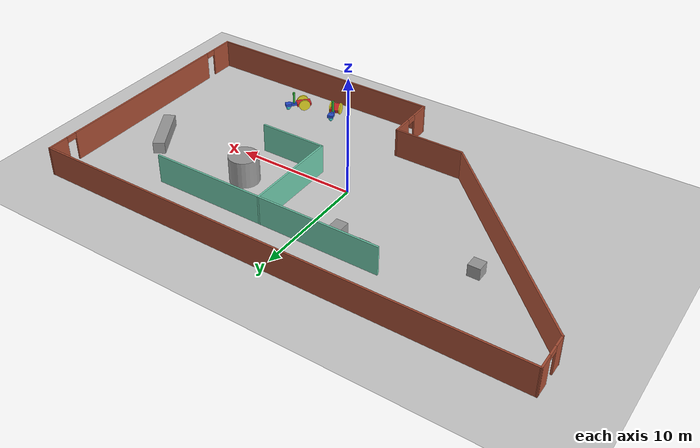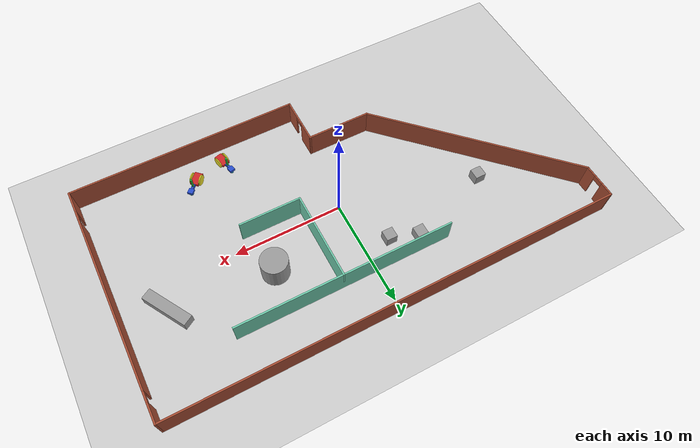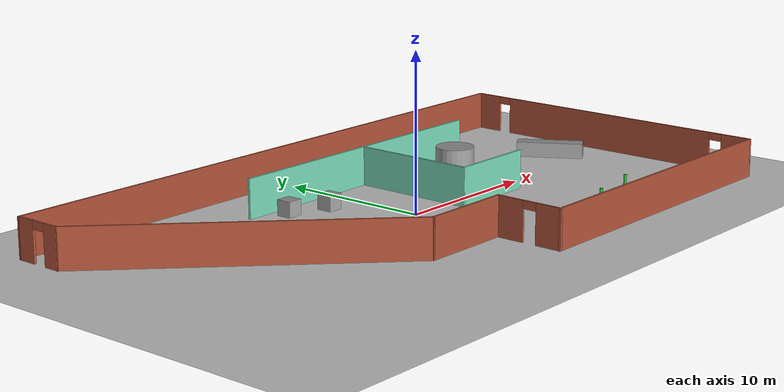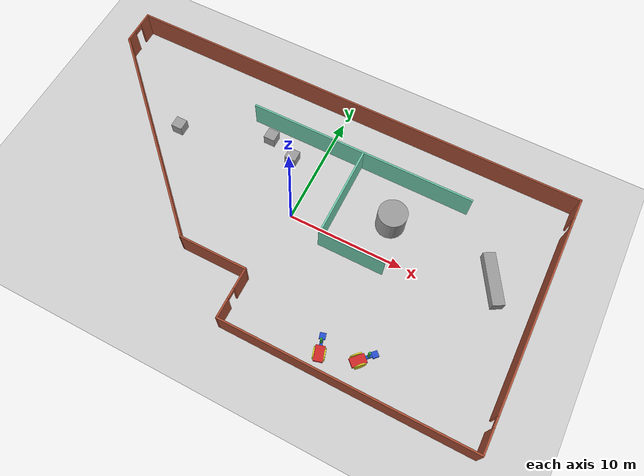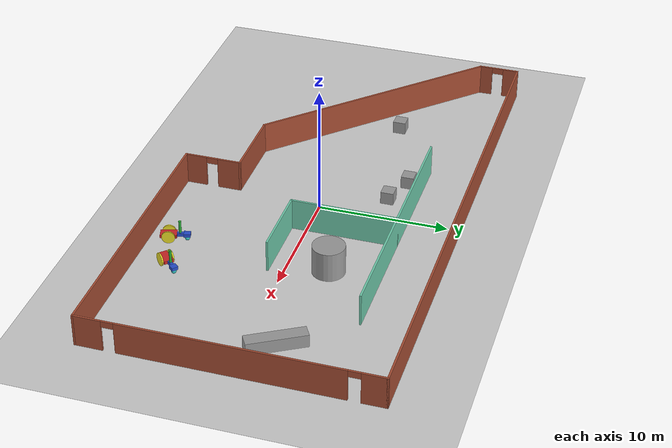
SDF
<sdf version="1.6">
 <world name="default">
  <light name="sun" type="directional">
   <pose>0 0 10 0 -0 0</pose>
   <diffuse>0.8 0.8 0.8 1</diffuse>
   <specular>0.2 0.2 0.2 1</specular>
   <attenuation>
    <range>1000</range>
    <constant>0.9</constant>
    <linear>0.01</linear>
    <quadratic>0.001</quadratic>
   </attenuation>
   <direction>-0.5 0.1 -0.9</direction>
  </light>
  <model name="ground_plane">
   <static>1</static>
   <link name="link">
    <collision name="collision">
     <geometry><plane><normal>0 0 1</normal><size>100 100</size></plane></geometry>
     <surface>
      <contact><collide_bitmask>65535</collide_bitmask></contact>
      <friction><ode><mu>100</mu><mu2>50</mu2></ode></friction>
     </surface>
    </collision>
    <visual name="visual">
     <cast_shadows>0</cast_shadows>
     <geometry><plane><normal>0 0 1</normal><size>100 100</size></plane></geometry>
     <material>
      <script><uri>file://media/materials/scripts/gazebo.material</uri><name>Gazebo/Grey</name></script>
     </material>
    </visual>
   </link>
  </model>
  <gravity>0 0 -9.8</gravity>
  <magnetic_field>6e-06 2.3e-05 -4.2e-05</magnetic_field>
  <atmosphere type="adiabatic"/>
  <physics name="default_physics" default="0" type="ode">
   <max_step_size>0.001</max_step_size>
   <real_time_factor>1</real_time_factor>
   <real_time_update_rate>1000</real_time_update_rate>
  </physics>
  <scene><ambient>0.4 0.4 0.4 1</ambient><background>0.7 0.7 0.7 1</background><shadows>1</shadows></scene>
  <audio><device>default</device></audio>
  <spherical_coordinates>
   <surface_model>EARTH_WGS84</surface_model>
   <latitude_deg>0</latitude_deg>
   <longitude_deg>0</longitude_deg>
   <elevation>0</elevation>
   <heading_deg>0</heading_deg>
  </spherical_coordinates>
  <model name="building">
   <pose>-0.062701 0.052877 0 0 -0 0</pose>
   <link name="Wall_11">
    <collision name="Wall_11_Collision">
     <geometry><box><size>20 0.15 2.5</size></box></geometry>
     <pose>0 0 1.25 0 -0 0</pose>
    </collision>
    <visual name="Wall_11_Visual">
     <pose>0 0 1.25 0 -0 0</pose>
     <geometry><box><size>20 0.15 2.5</size></box></geometry>
     <material>
      <script><uri>file://media/materials/scripts/gazebo.material</uri><name>Gazebo/Grey</name></script>
      <ambient>0.435294 0.796078 0.67451 1</ambient>
     </material>
     <meta><layer>0</layer></meta>
    </visual>
    <pose>2.98006 6.87932 0 0 -0 0</pose>
   </link>
   <link name="Wall_14">
    <collision name="Wall_14_Collision">
     <geometry><box><size>8.25 0.15 2.5</size></box></geometry>
     <pose>0 0 1.25 0 -0 0</pose>
    </collision>
    <visual name="Wall_14_Visual">
     <pose>0 0 1.25 0 -0 0</pose>
     <geometry><box><size>8.25 0.15 2.5</size></box></geometry>
     <material>
      <script><uri>file://media/materials/scripts/gazebo.material</uri><name>Gazebo/Grey</name></script>
      <ambient>0.435294 0.796078 0.67451 1</ambient>
     </material>
     <meta><layer>0</layer></meta>
    </visual>
    <pose>3.2569 2.82932 0 0 -0 -1.5708</pose>
   </link>
   <link name="Wall_15">
    <collision name="Wall_15_Collision">
     <geometry><box><size>5.75 0.15 2.5</size></box></geometry>
     <pose>0 0 1.25 0 -0 0</pose>
    </collision>
    <visual name="Wall_15_Visual">
     <pose>0 0 1.25 0 -0 0</pose>
     <geometry><box><size>5.75 0.15 2.5</size></box></geometry>
     <material>
      <script><uri>file://media/materials/scripts/gazebo.material</uri><name>Gazebo/Grey</name></script>
      <ambient>0.435294 0.796078 0.67451 1</ambient>
     </material>
     <meta><layer>0</layer></meta>
    </visual>
    <pose>6.0569 -1.22068 0 0 -0 0</pose>
   </link>
   <link name="Wall_3">
    <collision name="Wall_3_Collision">
     <geometry><box><size>41.5 0.15 2.5</size></box></geometry>
     <pose>0 0 1.25 0 -0 0</pose>
    </collision>
    <visual name="Wall_3_Visual">
     <pose>0 0 1.25 0 -0 0</pose>
     <geometry><box><size>41.5 0.15 2.5</size></box></geometry>
     <material>
      <script><uri>file://media/materials/scripts/gazebo.material</uri><name>Gazebo/Bricks</name></script>
      <ambient>1 1 1 1</ambient>
     </material>
     <meta><layer>0</layer></meta>
    </visual>
    <pose>0.010345 10.9249 0 0 -0 0</pose>
   </link>
   <link name="Wall_4">
    <pose>20.6853 -0.000125 0 0 -0 -1.5708</pose>
    <visual name="Wall_4_Visual_0">
     <pose>-10.0794 0 1.25 0 -0 0</pose>
     <geometry><box><size>1.84126 0.15 2.5</size></box></geometry>
     <material>
      <script><uri>file://media/materials/scripts/gazebo.material</uri><name>Gazebo/Bricks</name></script>
      <ambient>1 1 1 1</ambient>
     </material>
     <meta><layer>0</layer></meta>
    </visual>
    <collision name="Wall_4_Collision_0">
     <geometry><box><size>1.84126 0.15 2.5</size></box></geometry>
     <pose>-10.0794 0 1.25 0 -0 0</pose>
    </collision>
    <visual name="Wall_4_Visual_1">
     <pose>-0.142709 0 1.25 0 -0 0</pose>
     <geometry><box><size>16.2321 0.15 2.5</size></box></geometry>
     <material>
      <script><uri>file://media/materials/scripts/gazebo.material</uri><name>Gazebo/Bricks</name></script>
      <ambient>1 1 1 1</ambient>
     </material>
     <meta><layer>0</layer></meta>
    </visual>
    <collision name="Wall_4_Collision_1">
     <geometry><box><size>16.2321 0.15 2.5</size></box></geometry>
     <pose>-0.142709 0 1.25 0 -0 0</pose>
    </collision>
    <visual name="Wall_4_Visual_2">
     <pose>9.93666 0 1.25 0 -0 0</pose>
     <geometry><box><size>2.12668 0.15 2.5</size></box></geometry>
     <material>
      <script><uri>file://media/materials/scripts/gazebo.material</uri><name>Gazebo/Bricks</name></script>
      <ambient>1 1 1 1</ambient>
     </material>
     <meta><layer>0</layer></meta>
    </visual>
    <collision name="Wall_4_Collision_2">
     <geometry><box><size>2.12668 0.15 2.5</size></box></geometry>
     <pose>9.93666 0 1.25 0 -0 0</pose>
    </collision>
    <visual name="Wall_4_Visual_3">
     <pose>-8.70874 0 2.25 0 -0 0</pose>
     <geometry><box><size>0.9 0.15 0.5</size></box></geometry>
     <material>
      <script><uri>file://media/materials/scripts/gazebo.material</uri><name>Gazebo/Bricks</name></script>
      <ambient>1 1 1 1</ambient>
     </material>
     <meta><layer>0</layer></meta>
    </visual>
    <collision name="Wall_4_Collision_3">
     <geometry><box><size>0.9 0.15 0.5</size></box></geometry>
     <pose>-8.70874 0 2.25 0 -0 0</pose>
    </collision>
    <visual name="Wall_4_Visual_4">
     <pose>8.42332 0 2.25 0 -0 0</pose>
     <geometry><box><size>0.9 0.15 0.5</size></box></geometry>
     <material>
      <script><uri>file://media/materials/scripts/gazebo.material</uri><name>Gazebo/Bricks</name></script>
      <ambient>1 1 1 1</ambient>
     </material>
     <meta><layer>0</layer></meta>
    </visual>
    <collision name="Wall_4_Collision_4">
     <geometry><box><size>0.9 0.15 0.5</size></box></geometry>
     <pose>8.42332 0 2.25 0 -0 0</pose>
    </collision>
   </link>
   <link name="Wall_5">
    <collision name="Wall_5_Collision">
     <geometry><box><size>21.25 0.15 2.5</size></box></geometry>
     <pose>0 0 1.25 0 -0 0</pose>
    </collision>
    <visual name="Wall_5_Visual">
     <pose>0 0 1.25 0 -0 0</pose>
     <geometry><box><size>21.25 0.15 2.5</size></box></geometry>
     <material>
      <script><uri>file://media/materials/scripts/gazebo.material</uri><name>Gazebo/Bricks</name></script>
      <ambient>1 1 1 1</ambient>
     </material>
     <meta><layer>0</layer></meta>
    </visual>
    <pose>10.1353 -10.9251 0 0 -0 3.14159</pose>
   </link>
   <link name="Wall_6">
    <pose>-0.414655 -8.75013 0 0 -0 1.5708</pose>
    <visual name="Wall_6_Visual_0">
     <pose>-1.38014 0 1.25 0 -0 0</pose>
     <geometry><box><size>1.73971 0.15 2.5</size></box></geometry>
     <material>
      <script><uri>file://media/materials/scripts/gazebo.material</uri><name>Gazebo/Bricks</name></script>
      <ambient>1 1 1 1</ambient>
     </material>
     <meta><layer>0</layer></meta>
    </visual>
    <collision name="Wall_6_Collision_0">
     <geometry><box><size>1.73971 0.15 2.5</size></box></geometry>
     <pose>-1.38014 0 1.25 0 -0 0</pose>
    </collision>
    <visual name="Wall_6_Visual_1">
     <pose>1.31986 0 1.25 0 -0 0</pose>
     <geometry><box><size>1.86029 0.15 2.5</size></box></geometry>
     <material>
      <script><uri>file://media/materials/scripts/gazebo.material</uri><name>Gazebo/Bricks</name></script>
      <ambient>1 1 1 1</ambient>
     </material>
     <meta><layer>0</layer></meta>
    </visual>
    <collision name="Wall_6_Collision_1">
     <geometry><box><size>1.86029 0.15 2.5</size></box></geometry>
     <pose>1.31986 0 1.25 0 -0 0</pose>
    </collision>
    <visual name="Wall_6_Visual_2">
     <pose>-0.060286 0 2.25 0 -0 0</pose>
     <geometry><box><size>0.9 0.15 0.5</size></box></geometry>
     <material>
      <script><uri>file://media/materials/scripts/gazebo.material</uri><name>Gazebo/Bricks</name></script>
      <ambient>1 1 1 1</ambient>
     </material>
     <meta><layer>0</layer></meta>
    </visual>
    <collision name="Wall_6_Collision_2">
     <geometry><box><size>0.9 0.15 0.5</size></box></geometry>
     <pose>-0.060286 0 2.25 0 -0 0</pose>
    </collision>
   </link>
   <link name="Wall_7">
    <collision name="Wall_7_Collision">
     <geometry><box><size>6 0.15 2.5</size></box></geometry>
     <pose>0 0 1.25 0 -0 0</pose>
    </collision>
    <visual name="Wall_7_Visual">
     <pose>0 0 1.25 0 -0 0</pose>
     <geometry><box><size>6 0.15 2.5</size></box></geometry>
     <material>
      <script><uri>file://media/materials/scripts/gazebo.material</uri><name>Gazebo/Bricks</name></script>
      <ambient>1 1 1 1</ambient>
     </material>
     <meta><layer>0</layer></meta>
    </visual>
    <pose>-3.33966 -6.57512 0 0 -0 3.14159</pose>
   </link>
   <link name="Wall_8">
    <collision name="Wall_8_Collision">
     <geometry><box><size>20.5 0.15 2.5</size></box></geometry>
     <pose>0 0 1.25 0 -0 0</pose>
    </collision>
    <visual name="Wall_8_Visual">
     <pose>0 0 1.25 0 -0 0</pose>
     <geometry><box><size>20.5 0.15 2.5</size></box></geometry>
     <material>
      <script><uri>file://media/materials/scripts/gazebo.material</uri><name>Gazebo/Bricks</name></script>
      <ambient>1 1 1 1</ambient>
     </material>
     <meta><layer>0</layer></meta>
    </visual>
    <pose>-13.4595 0.619687 0 0 -0 2.35619</pose>
   </link>
   <link name="Wall_9">
    <pose>-20.6595 9.36969 0 0 -0 1.57413</pose>
    <visual name="Wall_9_Visual_0">
     <pose>-1.08931 0 1.25 0 -0 0</pose>
     <geometry><box><size>1.08177 0.15 2.5</size></box></geometry>
     <material>
      <script><uri>file://media/materials/scripts/gazebo.material</uri><name>Gazebo/Bricks</name></script>
      <ambient>1 1 1 1</ambient>
     </material>
     <meta><layer>0</layer></meta>
    </visual>
    <collision name="Wall_9_Collision_0">
     <geometry><box><size>1.08177 0.15 2.5</size></box></geometry>
     <pose>-1.08931 0 1.25 0 -0 0</pose>
    </collision>
    <visual name="Wall_9_Visual_1">
     <pose>0.990883 0 1.25 0 -0 0</pose>
     <geometry><box><size>1.27863 0.15 2.5</size></box></geometry>
     <material>
      <script><uri>file://media/materials/scripts/gazebo.material</uri><name>Gazebo/Bricks</name></script>
      <ambient>1 1 1 1</ambient>
     </material>
     <meta><layer>0</layer></meta>
    </visual>
    <collision name="Wall_9_Collision_1">
     <geometry><box><size>1.27863 0.15 2.5</size></box></geometry>
     <pose>0.990883 0 1.25 0 -0 0</pose>
    </collision>
    <visual name="Wall_9_Visual_2">
     <pose>-0.09843 0 2.25 0 -0 0</pose>
     <geometry><box><size>0.9 0.15 0.5</size></box></geometry>
     <material>
      <script><uri>file://media/materials/scripts/gazebo.material</uri><name>Gazebo/Bricks</name></script>
      <ambient>1 1 1 1</ambient>
     </material>
     <meta><layer>0</layer></meta>
    </visual>
    <collision name="Wall_9_Collision_2">
     <geometry><box><size>0.9 0.15 0.5</size></box></geometry>
     <pose>-0.09843 0 2.25 0 -0 0</pose>
    </collision>
   </link>
   <static>1</static>
  </model>
  <model name="unit_box">
   <pose>-12.669 3.04784 0.499995 0 1e-05 0</pose>
   <link name="link">
    <inertial>
     <mass>1</mass>
     <inertia>
      <ixx>0.166667</ixx>
      <ixy>0</ixy>
      <ixz>0</ixz>
      <iyy>0.166667</iyy>
      <iyz>0</iyz>
      <izz>0.166667</izz>
     </inertia>
    </inertial>
    <collision name="collision"><geometry><box><size>1 1 1</size></box></geometry></collision>
    <visual name="visual">
     <geometry><box><size>1 1 1</size></box></geometry>
     <material>
      <script><name>Gazebo/Grey</name><uri>file://media/materials/scripts/gazebo.material</uri></script>
     </material>
    </visual>
   </link>
  </model>
  <model name="unit_box_0">
   <pose>-4.92615 5.73594 0.499995 1e-05 -0 0</pose>
   <link name="link">
    <inertial>
     <mass>1</mass>
     <inertia>
      <ixx>0.166667</ixx>
      <ixy>0</ixy>
      <ixz>0</ixz>
      <iyy>0.166667</iyy>
      <iyz>0</iyz>
      <izz>0.166667</izz>
     </inertia>
    </inertial>
    <collision name="collision"><geometry><box><size>1 1 1</size></box></geometry></collision>
    <visual name="visual">
     <geometry><box><size>1 1 1</size></box></geometry>
     <material>
      <script><name>Gazebo/Grey</name><uri>file://media/materials/scripts/gazebo.material</uri></script>
     </material>
    </visual>
   </link>
  </model>
  <model name="unit_box_1">
   <pose>-2.39819 4.79802 0.499995 -1e-05 0 0</pose>
   <link name="link">
    <inertial>
     <mass>1</mass>
     <inertia>
      <ixx>0.166667</ixx>
      <ixy>0</ixy>
      <ixz>0</ixz>
      <iyy>0.166667</iyy>
      <iyz>0</iyz>
      <izz>0.166667</izz>
     </inertia>
    </inertial>
    <collision name="collision"><geometry><box><size>1 1 1</size></box></geometry></collision>
    <visual name="visual">
     <geometry><box><size>1 1 1</size></box></geometry>
     <material>
      <script><name>Gazebo/Grey</name><uri>file://media/materials/scripts/gazebo.material</uri></script>
     </material>
    </visual>
   </link>
  </model>
  <model name="unit_cylinder">
   <pose>7.64174 3.07512 1.14323 0 -0 0</pose>
   <link name="link">
    <inertial>
     <mass>1</mass>
     <inertia><ixx>0.145833</ixx><ixy>0</ixy><ixz>0</ixz><iyy>0.145833</iyy><iyz>0</iyz><izz>0.125</izz></inertia>
    </inertial>
    <collision name="collision">
     <geometry><cylinder><radius>1.2309</radius><length>2.28647</length></cylinder></geometry>
    </collision>
    <visual name="visual">
     <geometry><cylinder><radius>1.2309</radius><length>2.28647</length></cylinder></geometry>
     <material>
      <script><name>Gazebo/Grey</name><uri>file://media/materials/scripts/gazebo.material</uri></script>
     </material>
    </visual>
   </link>
  </model>
  <model name="unit_box_2">
   <pose>16.8777 2.18344 0.498944 -0.000478 0 0.531556</pose>
   <link name="link">
    <inertial>
     <mass>1</mass>
     <inertia>
      <ixx>0.166667</ixx>
      <ixy>0</ixy>
      <ixz>0</ixz>
      <iyy>0.166667</iyy>
      <iyz>0</iyz>
      <izz>0.166667</izz>
     </inertia>
    </inertial>
    <collision name="collision"><geometry><box><size>1 4.42523 1</size></box></geometry></collision>
    <visual name="visual">
     <geometry><box><size>1 4.42523 1</size></box></geometry>
     <material>
      <script><name>Gazebo/Grey</name><uri>file://media/materials/scripts/gazebo.material</uri></script>
     </material>
    </visual>
   </link>
  </model>
  <model name="model">
   <link name="link_1">
    <inertial>
     <mass>1</mass>
     <inertia>
      <ixx>0.166667</ixx>
      <ixy>0</ixy>
      <ixz>0</ixz>
      <iyy>0.166667</iyy>
      <iyz>0</iyz>
      <izz>0.166667</izz>
     </inertia>
    </inertial>
    <pose>0.002679 -0.035833 0.401131 0 -0 0</pose>
    <visual name="visual">
     <geometry><box><size>0.75 1.25 0.25</size></box></geometry>
     <material>
      <script><uri>file://media/materials/scripts/gazebo.material</uri><name>Gazebo/Red</name></script>
     </material>
    </visual>
    <collision name="collision">
     <geometry><box><size>0.75 1.25 0.25</size></box></geometry>
     <surface>
      <friction>
       <ode><mu>1</mu><mu2>1</mu2><fdir1>0 0 0</fdir1><slip1>0</slip1><slip2>0</slip2></ode>
       <torsional>
        <coefficient>1</coefficient>
        <patch_radius>0</patch_radius>
        <surface_radius>0</surface_radius>
        <use_patch_radius>1</use_patch_radius>
        <ode><slip>0</slip></ode>
       </torsional>
      </friction>
      <bounce><restitution_coefficient>0</restitution_coefficient><threshold>1e+06</threshold></bounce>
      <contact>
       <collide_without_contact>0</collide_without_contact>
       <collide_without_contact_bitmask>1</collide_without_contact_bitmask>
       <collide_bitmask>1</collide_bitmask>
       <ode>
        <soft_cfm>0</soft_cfm>
        <soft_erp>0.2</soft_erp>
        <kp>1e+13</kp>
        <kd>1</kd>
        <max_vel>0.01</max_vel>
        <min_depth>0</min_depth>
       </ode>
       <bullet>
        <split_impulse>1</split_impulse>
        <split_impulse_penetration_threshold>-0.01</split_impulse_penetration_threshold>
        <soft_cfm>0</soft_cfm>
        <soft_erp>0.2</soft_erp>
        <kp>1e+13</kp>
        <kd>1</kd>
       </bullet>
      </contact>
     </surface>
    </collision>
   </link>
   <link name="link_2_clone">
    <inertial>
     <mass>1</mass>
     <inertia><ixx>0.145833</ixx><ixy>0</ixy><ixz>0</ixz><iyy>0.145833</iyy><iyz>0</iyz><izz>0.125</izz></inertia>
    </inertial>
    <pose>-0.422418 -0.035833 0.401131 1.5707 0 1.5707</pose>
    <visual name="visual">
     <geometry><cylinder><radius>0.5</radius><length>0.1</length></cylinder></geometry>
     <material>
      <script><uri>file://media/materials/scripts/gazebo.material</uri><name>Gazebo/Yellow</name></script>
     </material>
    </visual>
    <collision name="collision">
     <geometry><cylinder><radius>0.5</radius><length>0.1</length></cylinder></geometry>
     <surface>
      <friction>
       <ode><mu>1</mu><mu2>1</mu2><fdir1>0 0 0</fdir1><slip1>0</slip1><slip2>0</slip2></ode>
       <torsional>
        <coefficient>1</coefficient>
        <patch_radius>0</patch_radius>
        <surface_radius>0</surface_radius>
        <use_patch_radius>1</use_patch_radius>
        <ode><slip>0</slip></ode>
       </torsional>
      </friction>
      <bounce><restitution_coefficient>0</restitution_coefficient><threshold>1e+06</threshold></bounce>
      <contact>
       <collide_without_contact>0</collide_without_contact>
       <collide_without_contact_bitmask>1</collide_without_contact_bitmask>
       <collide_bitmask>1</collide_bitmask>
       <ode>
        <soft_cfm>0</soft_cfm>
        <soft_erp>0.2</soft_erp>
        <kp>1e+13</kp>
        <kd>1</kd>
        <max_vel>0.01</max_vel>
        <min_depth>0</min_depth>
       </ode>
       <bullet>
        <split_impulse>1</split_impulse>
        <split_impulse_penetration_threshold>-0.01</split_impulse_penetration_threshold>
        <soft_cfm>0</soft_cfm>
        <soft_erp>0.2</soft_erp>
        <kp>1e+13</kp>
        <kd>1</kd>
       </bullet>
      </contact>
     </surface>
    </collision>
   </link>
   <link name="link_2_clone_clone">
    <inertial>
     <mass>1</mass>
     <inertia><ixx>0.145833</ixx><ixy>0</ixy><ixz>0</ixz><iyy>0.145833</iyy><iyz>0</iyz><izz>0.125</izz></inertia>
    </inertial>
    <pose>0.427775 -0.035833 0.401131 1.5707 0 1.5707</pose>
    <visual name="visual">
     <geometry><cylinder><radius>0.5</radius><length>0.1</length></cylinder></geometry>
     <material>
      <script><uri>file://media/materials/scripts/gazebo.material</uri><name>Gazebo/Yellow</name></script>
     </material>
    </visual>
    <collision name="collision">
     <geometry><cylinder><radius>0.5</radius><length>0.1</length></cylinder></geometry>
     <surface>
      <friction>
       <ode><mu>1</mu><mu2>1</mu2><fdir1>0 0 0</fdir1><slip1>0</slip1><slip2>0</slip2></ode>
       <torsional>
        <coefficient>1</coefficient>
        <patch_radius>0</patch_radius>
        <surface_radius>0</surface_radius>
        <use_patch_radius>1</use_patch_radius>
        <ode><slip>0</slip></ode>
       </torsional>
      </friction>
      <bounce><restitution_coefficient>0</restitution_coefficient><threshold>1e+06</threshold></bounce>
      <contact>
       <collide_without_contact>0</collide_without_contact>
       <collide_without_contact_bitmask>1</collide_without_contact_bitmask>
       <collide_bitmask>1</collide_bitmask>
       <ode>
        <soft_cfm>0</soft_cfm>
        <soft_erp>0.2</soft_erp>
        <kp>1e+13</kp>
        <kd>1</kd>
        <max_vel>0.01</max_vel>
        <min_depth>0</min_depth>
       </ode>
       <bullet>
        <split_impulse>1</split_impulse>
        <split_impulse_penetration_threshold>-0.01</split_impulse_penetration_threshold>
        <soft_cfm>0</soft_cfm>
        <soft_erp>0.2</soft_erp>
        <kp>1e+13</kp>
        <kd>1</kd>
       </bullet>
      </contact>
     </surface>
    </collision>
   </link>
   <link name="link_3">
    <inertial>
     <mass>1</mass>
     <inertia>
      <ixx>0.166667</ixx>
      <ixy>0</ixy>
      <ixz>0</ixz>
      <iyy>0.166667</iyy>
      <iyz>0</iyz>
      <izz>0.166667</izz>
     </inertia>
    </inertial>
    <pose>-0.004821 0.839167 0.401131 0 -0 0</pose>
    <visual name="visual">
     <geometry><box><size>0.25 0.5 0.25</size></box></geometry>
     <material>
      <script><uri>file://media/materials/scripts/gazebo.material</uri><name>Gazebo/Blue</name></script>
     </material>
    </visual>
    <collision name="collision">
     <geometry><box><size>0.25 0.5 0.25</size></box></geometry>
     <surface>
      <friction>
       <ode><mu>1</mu><mu2>1</mu2><fdir1>0 0 0</fdir1><slip1>0</slip1><slip2>0</slip2></ode>
       <torsional>
        <coefficient>1</coefficient>
        <patch_radius>0</patch_radius>
        <surface_radius>0</surface_radius>
        <use_patch_radius>1</use_patch_radius>
        <ode><slip>0</slip></ode>
       </torsional>
      </friction>
      <bounce><restitution_coefficient>0</restitution_coefficient><threshold>1e+06</threshold></bounce>
      <contact>
       <collide_without_contact>0</collide_without_contact>
       <collide_without_contact_bitmask>1</collide_without_contact_bitmask>
       <collide_bitmask>1</collide_bitmask>
       <ode>
        <soft_cfm>0</soft_cfm>
        <soft_erp>0.2</soft_erp>
        <kp>1e+13</kp>
        <kd>1</kd>
        <max_vel>0.01</max_vel>
        <min_depth>0</min_depth>
       </ode>
       <bullet>
        <split_impulse>1</split_impulse>
        <split_impulse_penetration_threshold>-0.01</split_impulse_penetration_threshold>
        <soft_cfm>0</soft_cfm>
        <soft_erp>0.2</soft_erp>
        <kp>1e+13</kp>
        <kd>1</kd>
       </bullet>
      </contact>
     </surface>
    </collision>
   </link>
   <link name="link_3_clone">
    <inertial>
     <mass>1</mass>
     <inertia>
      <ixx>0.166667</ixx>
      <ixy>0</ixy>
      <ixz>0</ixz>
      <iyy>0.166667</iyy>
      <iyz>0</iyz>
      <izz>0.166667</izz>
     </inertia>
    </inertial>
    <pose>0.002679 1.33917 0.401131 0 -0 0</pose>
    <visual name="visual">
     <geometry><box><size>0.5 0.5 0.25</size></box></geometry>
     <material>
      <script><uri>file://media/materials/scripts/gazebo.material</uri><name>Gazebo/Blue</name></script>
     </material>
    </visual>
    <collision name="collision">
     <geometry><box><size>0.5 0.5 0.25</size></box></geometry>
     <surface>
      <friction>
       <ode><mu>1</mu><mu2>1</mu2><fdir1>0 0 0</fdir1><slip1>0</slip1><slip2>0</slip2></ode>
       <torsional>
        <coefficient>1</coefficient>
        <patch_radius>0</patch_radius>
        <surface_radius>0</surface_radius>
        <use_patch_radius>1</use_patch_radius>
        <ode><slip>0</slip></ode>
       </torsional>
      </friction>
      <bounce><restitution_coefficient>0</restitution_coefficient><threshold>1e+06</threshold></bounce>
      <contact>
       <collide_without_contact>0</collide_without_contact>
       <collide_without_contact_bitmask>1</collide_without_contact_bitmask>
       <collide_bitmask>1</collide_bitmask>
       <ode>
        <soft_cfm>0</soft_cfm>
        <soft_erp>0.2</soft_erp>
        <kp>1e+13</kp>
        <kd>1</kd>
        <max_vel>0.01</max_vel>
        <min_depth>0</min_depth>
       </ode>
       <bullet>
        <split_impulse>1</split_impulse>
        <split_impulse_penetration_threshold>-0.01</split_impulse_penetration_threshold>
        <soft_cfm>0</soft_cfm>
        <soft_erp>0.2</soft_erp>
        <kp>1e+13</kp>
        <kd>1</kd>
       </bullet>
      </contact>
     </surface>
    </collision>
   </link>
   <link name="link_4">
    <inertial>
     <mass>1</mass>
     <inertia><ixx>0.1</ixx><ixy>0</ixy><ixz>0</ixz><iyy>0.1</iyy><iyz>0</iyz><izz>0.1</izz></inertia>
    </inertial>
    <pose>0.002679 1.33917 0.088631 0 -0 0</pose>
    <visual name="visual">
     <geometry><sphere><radius>0.1875</radius></sphere></geometry>
     <material>
      <script><uri>file://media/materials/scripts/gazebo.material</uri><name>Gazebo/Turquoise</name></script>
     </material>
    </visual>
    <collision name="collision">
     <geometry><sphere><radius>0.1875</radius></sphere></geometry>
     <surface>
      <friction>
       <ode><mu>1</mu><mu2>1</mu2><fdir1>0 0 0</fdir1><slip1>0</slip1><slip2>0</slip2></ode>
       <torsional>
        <coefficient>1</coefficient>
        <patch_radius>0</patch_radius>
        <surface_radius>0</surface_radius>
        <use_patch_radius>1</use_patch_radius>
        <ode><slip>0</slip></ode>
       </torsional>
      </friction>
      <bounce><restitution_coefficient>0</restitution_coefficient><threshold>1e+06</threshold></bounce>
      <contact>
       <collide_without_contact>0</collide_without_contact>
       <collide_without_contact_bitmask>1</collide_without_contact_bitmask>
       <collide_bitmask>1</collide_bitmask>
       <ode>
        <soft_cfm>0</soft_cfm>
        <soft_erp>0.2</soft_erp>
        <kp>1e+13</kp>
        <kd>1</kd>
        <max_vel>0.01</max_vel>
        <min_depth>0</min_depth>
       </ode>
       <bullet>
        <split_impulse>1</split_impulse>
        <split_impulse_penetration_threshold>-0.01</split_impulse_penetration_threshold>
        <soft_cfm>0</soft_cfm>
        <soft_erp>0.2</soft_erp>
        <kp>1e+13</kp>
        <kd>1</kd>
       </bullet>
      </contact>
     </surface>
    </collision>
   </link>
   <link name="link_5">
    <inertial>
     <mass>1</mass>
     <inertia><ixx>0.145833</ixx><ixy>0</ixy><ixz>0</ixz><iyy>0.145833</iyy><iyz>0</iyz><izz>0.125</izz></inertia>
    </inertial>
    <pose>-0.017321 0.819167 1.04113 0 -0 0</pose>
    <visual name="visual">
     <geometry><cylinder><radius>0.1</radius><length>1</length></cylinder></geometry>
     <material>
      <script><uri>file://media/materials/scripts/gazebo.material</uri><name>Gazebo/Green</name></script>
     </material>
    </visual>
    <collision name="collision">
     <geometry><cylinder><radius>0.1</radius><length>1</length></cylinder></geometry>
     <surface>
      <friction>
       <ode><mu>1</mu><mu2>1</mu2><fdir1>0 0 0</fdir1><slip1>0</slip1><slip2>0</slip2></ode>
       <torsional>
        <coefficient>1</coefficient>
        <patch_radius>0</patch_radius>
        <surface_radius>0</surface_radius>
        <use_patch_radius>1</use_patch_radius>
        <ode><slip>0</slip></ode>
       </torsional>
      </friction>
      <bounce><restitution_coefficient>0</restitution_coefficient><threshold>1e+06</threshold></bounce>
      <contact>
       <collide_without_contact>0</collide_without_contact>
       <collide_without_contact_bitmask>1</collide_without_contact_bitmask>
       <collide_bitmask>1</collide_bitmask>
       <ode>
        <soft_cfm>0</soft_cfm>
        <soft_erp>0.2</soft_erp>
        <kp>1e+13</kp>
        <kd>1</kd>
        <max_vel>0.01</max_vel>
        <min_depth>0</min_depth>
       </ode>
       <bullet>
        <split_impulse>1</split_impulse>
        <split_impulse_penetration_threshold>-0.01</split_impulse_penetration_threshold>
        <soft_cfm>0</soft_cfm>
        <soft_erp>0.2</soft_erp>
        <kp>1e+13</kp>
        <kd>1</kd>
       </bullet>
      </contact>
     </surface>
    </collision>
   </link>
   <joint name="link_1_JOINT_0" type="revolute">
    <parent>link_1</parent>
    <child>link_2_clone_clone</child>
    <axis>
     <xyz>0 0 1</xyz>
     <use_parent_model_frame>0</use_parent_model_frame>
     <limit>
      <lower>-1.79769e+308</lower>
      <upper>1.79769e+308</upper>
      <effort>-1</effort>
      <velocity>-1</velocity>
     </limit>
     <dynamics>
      <spring_reference>0</spring_reference>
      <spring_stiffness>0</spring_stiffness>
      <damping>0</damping>
     </dynamics>
    </axis>
    <physics>
     <ode><limit><cfm>0</cfm><erp>0.2</erp></limit><suspension><cfm>0</cfm><erp>0.2</erp></suspension></ode>
    </physics>
   </joint>
   <joint name="link_1_JOINT_1" type="revolute">
    <parent>link_1</parent>
    <child>link_2_clone</child>
    <axis>
     <xyz>0 0 1</xyz>
     <use_parent_model_frame>0</use_parent_model_frame>
     <limit>
      <lower>-1.79769e+308</lower>
      <upper>1.79769e+308</upper>
      <effort>-1</effort>
      <velocity>-1</velocity>
     </limit>
     <dynamics>
      <spring_reference>0</spring_reference>
      <spring_stiffness>0</spring_stiffness>
      <damping>0</damping>
     </dynamics>
    </axis>
    <physics>
     <ode><limit><cfm>0</cfm><erp>0.2</erp></limit><suspension><cfm>0</cfm><erp>0.2</erp></suspension></ode>
    </physics>
   </joint>
   <joint name="link_1_JOINT_3" type="fixed">
    <parent>link_1</parent>
    <child>link_3</child>
    <physics>
     <ode><limit><cfm>0</cfm><erp>0.2</erp></limit><suspension><cfm>0</cfm><erp>0.2</erp></suspension></ode>
    </physics>
   </joint>
   <joint name="link_3_JOINT_4" type="fixed">
    <parent>link_3</parent>
    <child>link_3_clone</child>
    <physics>
     <ode><limit><cfm>0</cfm><erp>0.2</erp></limit><suspension><cfm>0</cfm><erp>0.2</erp></suspension></ode>
    </physics>
   </joint>
   <joint name="link_3_JOINT_6" type="fixed">
    <parent>link_3</parent>
    <child>link_5</child>
    <physics>
     <ode><limit><cfm>0</cfm><erp>0.2</erp></limit><suspension><cfm>0</cfm><erp>0.2</erp></suspension></ode>
    </physics>
   </joint>
   <joint name="link_3_clone_JOINT_5" type="ball">
    <parent>link_3_clone</parent>
    <child>link_4</child>
    <physics>
     <ode><limit><cfm>0</cfm><erp>0.2</erp></limit><suspension><cfm>0</cfm><erp>0.2</erp></suspension></ode>
    </physics>
   </joint>
   <static>0</static>
   <pose>7.32854 -9.3021 0.098873 -3e-06 3e-06 0.273419</pose>
  </model>
  <model name="model_0">
   <link name="link_1">
    <inertial>
     <mass>1</mass>
     <inertia>
      <ixx>0.166667</ixx>
      <ixy>0</ixy>
      <ixz>0</ixz>
      <iyy>0.166667</iyy>
      <iyz>0</iyz>
      <izz>0.166667</izz>
     </inertia>
    </inertial>
    <pose>0.002679 -0.035833 0.401131 0 -0 0</pose>
    <visual name="visual">
     <geometry><box><size>0.75 1.25 0.25</size></box></geometry>
     <material>
      <script><uri>file://media/materials/scripts/gazebo.material</uri><name>Gazebo/Red</name></script>
     </material>
    </visual>
    <collision name="collision">
     <geometry><box><size>0.75 1.25 0.25</size></box></geometry>
     <surface>
      <friction>
       <ode><mu>1</mu><mu2>1</mu2><fdir1>0 0 0</fdir1><slip1>0</slip1><slip2>0</slip2></ode>
       <torsional>
        <coefficient>1</coefficient>
        <patch_radius>0</patch_radius>
        <surface_radius>0</surface_radius>
        <use_patch_radius>1</use_patch_radius>
        <ode><slip>0</slip></ode>
       </torsional>
      </friction>
      <bounce><restitution_coefficient>0</restitution_coefficient><threshold>1e+06</threshold></bounce>
      <contact>
       <collide_without_contact>0</collide_without_contact>
       <collide_without_contact_bitmask>1</collide_without_contact_bitmask>
       <collide_bitmask>1</collide_bitmask>
       <ode>
        <soft_cfm>0</soft_cfm>
        <soft_erp>0.2</soft_erp>
        <kp>1e+13</kp>
        <kd>1</kd>
        <max_vel>0.01</max_vel>
        <min_depth>0</min_depth>
       </ode>
       <bullet>
        <split_impulse>1</split_impulse>
        <split_impulse_penetration_threshold>-0.01</split_impulse_penetration_threshold>
        <soft_cfm>0</soft_cfm>
        <soft_erp>0.2</soft_erp>
        <kp>1e+13</kp>
        <kd>1</kd>
       </bullet>
      </contact>
     </surface>
    </collision>
   </link>
   <link name="link_2_clone">
    <inertial>
     <mass>1</mass>
     <inertia><ixx>0.145833</ixx><ixy>0</ixy><ixz>0</ixz><iyy>0.145833</iyy><iyz>0</iyz><izz>0.125</izz></inertia>
    </inertial>
    <pose>-0.422418 -0.035833 0.401131 1.5707 0 1.5707</pose>
    <visual name="visual">
     <geometry><cylinder><radius>0.5</radius><length>0.1</length></cylinder></geometry>
     <material>
      <script><uri>file://media/materials/scripts/gazebo.material</uri><name>Gazebo/Yellow</name></script>
     </material>
    </visual>
    <collision name="collision">
     <geometry><cylinder><radius>0.5</radius><length>0.1</length></cylinder></geometry>
     <surface>
      <friction>
       <ode><mu>1</mu><mu2>1</mu2><fdir1>0 0 0</fdir1><slip1>0</slip1><slip2>0</slip2></ode>
       <torsional>
        <coefficient>1</coefficient>
        <patch_radius>0</patch_radius>
        <surface_radius>0</surface_radius>
        <use_patch_radius>1</use_patch_radius>
        <ode><slip>0</slip></ode>
       </torsional>
      </friction>
      <bounce><restitution_coefficient>0</restitution_coefficient><threshold>1e+06</threshold></bounce>
      <contact>
       <collide_without_contact>0</collide_without_contact>
       <collide_without_contact_bitmask>1</collide_without_contact_bitmask>
       <collide_bitmask>1</collide_bitmask>
       <ode>
        <soft_cfm>0</soft_cfm>
        <soft_erp>0.2</soft_erp>
        <kp>1e+13</kp>
        <kd>1</kd>
        <max_vel>0.01</max_vel>
        <min_depth>0</min_depth>
       </ode>
       <bullet>
        <split_impulse>1</split_impulse>
        <split_impulse_penetration_threshold>-0.01</split_impulse_penetration_threshold>
        <soft_cfm>0</soft_cfm>
        <soft_erp>0.2</soft_erp>
        <kp>1e+13</kp>
        <kd>1</kd>
       </bullet>
      </contact>
     </surface>
    </collision>
   </link>
   <link name="link_2_clone_clone">
    <inertial>
     <mass>1</mass>
     <inertia><ixx>0.145833</ixx><ixy>0</ixy><ixz>0</ixz><iyy>0.145833</iyy><iyz>0</iyz><izz>0.125</izz></inertia>
    </inertial>
    <pose>0.427775 -0.035833 0.401131 1.5707 0 1.5707</pose>
    <visual name="visual">
     <geometry><cylinder><radius>0.5</radius><length>0.1</length></cylinder></geometry>
     <material>
      <script><uri>file://media/materials/scripts/gazebo.material</uri><name>Gazebo/Yellow</name></script>
     </material>
    </visual>
    <collision name="collision">
     <geometry><cylinder><radius>0.5</radius><length>0.1</length></cylinder></geometry>
     <surface>
      <friction>
       <ode><mu>1</mu><mu2>1</mu2><fdir1>0 0 0</fdir1><slip1>0</slip1><slip2>0</slip2></ode>
       <torsional>
        <coefficient>1</coefficient>
        <patch_radius>0</patch_radius>
        <surface_radius>0</surface_radius>
        <use_patch_radius>1</use_patch_radius>
        <ode><slip>0</slip></ode>
       </torsional>
      </friction>
      <bounce><restitution_coefficient>0</restitution_coefficient><threshold>1e+06</threshold></bounce>
      <contact>
       <collide_without_contact>0</collide_without_contact>
       <collide_without_contact_bitmask>1</collide_without_contact_bitmask>
       <collide_bitmask>1</collide_bitmask>
       <ode>
        <soft_cfm>0</soft_cfm>
        <soft_erp>0.2</soft_erp>
        <kp>1e+13</kp>
        <kd>1</kd>
        <max_vel>0.01</max_vel>
        <min_depth>0</min_depth>
       </ode>
       <bullet>
        <split_impulse>1</split_impulse>
        <split_impulse_penetration_threshold>-0.01</split_impulse_penetration_threshold>
        <soft_cfm>0</soft_cfm>
        <soft_erp>0.2</soft_erp>
        <kp>1e+13</kp>
        <kd>1</kd>
       </bullet>
      </contact>
     </surface>
    </collision>
   </link>
   <link name="link_3">
    <inertial>
     <mass>1</mass>
     <inertia>
      <ixx>0.166667</ixx>
      <ixy>0</ixy>
      <ixz>0</ixz>
      <iyy>0.166667</iyy>
      <iyz>0</iyz>
      <izz>0.166667</izz>
     </inertia>
    </inertial>
    <pose>-0.004821 0.839167 0.401131 0 -0 0</pose>
    <visual name="visual">
     <geometry><box><size>0.25 0.5 0.25</size></box></geometry>
     <material>
      <script><uri>file://media/materials/scripts/gazebo.material</uri><name>Gazebo/Blue</name></script>
     </material>
    </visual>
    <collision name="collision">
     <geometry><box><size>0.25 0.5 0.25</size></box></geometry>
     <surface>
      <friction>
       <ode><mu>1</mu><mu2>1</mu2><fdir1>0 0 0</fdir1><slip1>0</slip1><slip2>0</slip2></ode>
       <torsional>
        <coefficient>1</coefficient>
        <patch_radius>0</patch_radius>
        <surface_radius>0</surface_radius>
        <use_patch_radius>1</use_patch_radius>
        <ode><slip>0</slip></ode>
       </torsional>
      </friction>
      <bounce><restitution_coefficient>0</restitution_coefficient><threshold>1e+06</threshold></bounce>
      <contact>
       <collide_without_contact>0</collide_without_contact>
       <collide_without_contact_bitmask>1</collide_without_contact_bitmask>
       <collide_bitmask>1</collide_bitmask>
       <ode>
        <soft_cfm>0</soft_cfm>
        <soft_erp>0.2</soft_erp>
        <kp>1e+13</kp>
        <kd>1</kd>
        <max_vel>0.01</max_vel>
        <min_depth>0</min_depth>
       </ode>
       <bullet>
        <split_impulse>1</split_impulse>
        <split_impulse_penetration_threshold>-0.01</split_impulse_penetration_threshold>
        <soft_cfm>0</soft_cfm>
        <soft_erp>0.2</soft_erp>
        <kp>1e+13</kp>
        <kd>1</kd>
       </bullet>
      </contact>
     </surface>
    </collision>
   </link>
   <link name="link_3_clone">
    <inertial>
     <mass>1</mass>
     <inertia>
      <ixx>0.166667</ixx>
      <ixy>0</ixy>
      <ixz>0</ixz>
      <iyy>0.166667</iyy>
      <iyz>0</iyz>
      <izz>0.166667</izz>
     </inertia>
    </inertial>
    <pose>0.002679 1.33917 0.401131 0 -0 0</pose>
    <visual name="visual">
     <geometry><box><size>0.5 0.5 0.25</size></box></geometry>
     <material>
      <script><uri>file://media/materials/scripts/gazebo.material</uri><name>Gazebo/Blue</name></script>
     </material>
    </visual>
    <collision name="collision">
     <geometry><box><size>0.5 0.5 0.25</size></box></geometry>
     <surface>
      <friction>
       <ode><mu>1</mu><mu2>1</mu2><fdir1>0 0 0</fdir1><slip1>0</slip1><slip2>0</slip2></ode>
       <torsional>
        <coefficient>1</coefficient>
        <patch_radius>0</patch_radius>
        <surface_radius>0</surface_radius>
        <use_patch_radius>1</use_patch_radius>
        <ode><slip>0</slip></ode>
       </torsional>
      </friction>
      <bounce><restitution_coefficient>0</restitution_coefficient><threshold>1e+06</threshold></bounce>
      <contact>
       <collide_without_contact>0</collide_without_contact>
       <collide_without_contact_bitmask>1</collide_without_contact_bitmask>
       <collide_bitmask>1</collide_bitmask>
       <ode>
        <soft_cfm>0</soft_cfm>
        <soft_erp>0.2</soft_erp>
        <kp>1e+13</kp>
        <kd>1</kd>
        <max_vel>0.01</max_vel>
        <min_depth>0</min_depth>
       </ode>
       <bullet>
        <split_impulse>1</split_impulse>
        <split_impulse_penetration_threshold>-0.01</split_impulse_penetration_threshold>
        <soft_cfm>0</soft_cfm>
        <soft_erp>0.2</soft_erp>
        <kp>1e+13</kp>
        <kd>1</kd>
       </bullet>
      </contact>
     </surface>
    </collision>
   </link>
   <link name="link_4">
    <inertial>
     <mass>1</mass>
     <inertia><ixx>0.1</ixx><ixy>0</ixy><ixz>0</ixz><iyy>0.1</iyy><iyz>0</iyz><izz>0.1</izz></inertia>
    </inertial>
    <pose>0.002679 1.33917 0.088631 0 -0 0</pose>
    <visual name="visual">
     <geometry><sphere><radius>0.1875</radius></sphere></geometry>
     <material>
      <script><uri>file://media/materials/scripts/gazebo.material</uri><name>Gazebo/Turquoise</name></script>
     </material>
    </visual>
    <collision name="collision">
     <geometry><sphere><radius>0.1875</radius></sphere></geometry>
     <surface>
      <friction>
       <ode><mu>1</mu><mu2>1</mu2><fdir1>0 0 0</fdir1><slip1>0</slip1><slip2>0</slip2></ode>
       <torsional>
        <coefficient>1</coefficient>
        <patch_radius>0</patch_radius>
        <surface_radius>0</surface_radius>
        <use_patch_radius>1</use_patch_radius>
        <ode><slip>0</slip></ode>
       </torsional>
      </friction>
      <bounce><restitution_coefficient>0</restitution_coefficient><threshold>1e+06</threshold></bounce>
      <contact>
       <collide_without_contact>0</collide_without_contact>
       <collide_without_contact_bitmask>1</collide_without_contact_bitmask>
       <collide_bitmask>1</collide_bitmask>
       <ode>
        <soft_cfm>0</soft_cfm>
        <soft_erp>0.2</soft_erp>
        <kp>1e+13</kp>
        <kd>1</kd>
        <max_vel>0.01</max_vel>
        <min_depth>0</min_depth>
       </ode>
       <bullet>
        <split_impulse>1</split_impulse>
        <split_impulse_penetration_threshold>-0.01</split_impulse_penetration_threshold>
        <soft_cfm>0</soft_cfm>
        <soft_erp>0.2</soft_erp>
        <kp>1e+13</kp>
        <kd>1</kd>
       </bullet>
      </contact>
     </surface>
    </collision>
   </link>
   <link name="link_5">
    <inertial>
     <mass>1</mass>
     <inertia><ixx>0.145833</ixx><ixy>0</ixy><ixz>0</ixz><iyy>0.145833</iyy><iyz>0</iyz><izz>0.125</izz></inertia>
    </inertial>
    <pose>-0.017321 0.819167 1.04113 0 -0 0</pose>
    <visual name="visual">
     <geometry><cylinder><radius>0.1</radius><length>1</length></cylinder></geometry>
     <material>
      <script><uri>file://media/materials/scripts/gazebo.material</uri><name>Gazebo/Green</name></script>
     </material>
    </visual>
    <collision name="collision">
     <geometry><cylinder><radius>0.1</radius><length>1</length></cylinder></geometry>
     <surface>
      <friction>
       <ode><mu>1</mu><mu2>1</mu2><fdir1>0 0 0</fdir1><slip1>0</slip1><slip2>0</slip2></ode>
       <torsional>
        <coefficient>1</coefficient>
        <patch_radius>0</patch_radius>
        <surface_radius>0</surface_radius>
        <use_patch_radius>1</use_patch_radius>
        <ode><slip>0</slip></ode>
       </torsional>
      </friction>
      <bounce><restitution_coefficient>0</restitution_coefficient><threshold>1e+06</threshold></bounce>
      <contact>
       <collide_without_contact>0</collide_without_contact>
       <collide_without_contact_bitmask>1</collide_without_contact_bitmask>
       <collide_bitmask>1</collide_bitmask>
       <ode>
        <soft_cfm>0</soft_cfm>
        <soft_erp>0.2</soft_erp>
        <kp>1e+13</kp>
        <kd>1</kd>
        <max_vel>0.01</max_vel>
        <min_depth>0</min_depth>
       </ode>
       <bullet>
        <split_impulse>1</split_impulse>
        <split_impulse_penetration_threshold>-0.01</split_impulse_penetration_threshold>
        <soft_cfm>0</soft_cfm>
        <soft_erp>0.2</soft_erp>
        <kp>1e+13</kp>
        <kd>1</kd>
       </bullet>
      </contact>
     </surface>
    </collision>
   </link>
   <joint name="link_1_JOINT_0" type="revolute">
    <parent>link_1</parent>
    <child>link_2_clone_clone</child>
    <axis>
     <xyz>0 0 1</xyz>
     <use_parent_model_frame>0</use_parent_model_frame>
     <limit>
      <lower>-1.79769e+308</lower>
      <upper>1.79769e+308</upper>
      <effort>-1</effort>
      <velocity>-1</velocity>
     </limit>
     <dynamics>
      <spring_reference>0</spring_reference>
      <spring_stiffness>0</spring_stiffness>
      <damping>0</damping>
     </dynamics>
    </axis>
    <physics>
     <ode><limit><cfm>0</cfm><erp>0.2</erp></limit><suspension><cfm>0</cfm><erp>0.2</erp></suspension></ode>
    </physics>
   </joint>
   <joint name="link_1_JOINT_1" type="revolute">
    <parent>link_1</parent>
    <child>link_2_clone</child>
    <axis>
     <xyz>0 0 1</xyz>
     <use_parent_model_frame>0</use_parent_model_frame>
     <limit>
      <lower>-1.79769e+308</lower>
      <upper>1.79769e+308</upper>
      <effort>-1</effort>
      <velocity>-1</velocity>
     </limit>
     <dynamics>
      <spring_reference>0</spring_reference>
      <spring_stiffness>0</spring_stiffness>
      <damping>0</damping>
     </dynamics>
    </axis>
    <physics>
     <ode><limit><cfm>0</cfm><erp>0.2</erp></limit><suspension><cfm>0</cfm><erp>0.2</erp></suspension></ode>
    </physics>
   </joint>
   <joint name="link_1_JOINT_3" type="fixed">
    <parent>link_1</parent>
    <child>link_3</child>
    <physics>
     <ode><limit><cfm>0</cfm><erp>0.2</erp></limit><suspension><cfm>0</cfm><erp>0.2</erp></suspension></ode>
    </physics>
   </joint>
   <joint name="link_3_JOINT_4" type="fixed">
    <parent>link_3</parent>
    <child>link_3_clone</child>
    <physics>
     <ode><limit><cfm>0</cfm><erp>0.2</erp></limit><suspension><cfm>0</cfm><erp>0.2</erp></suspension></ode>
    </physics>
   </joint>
   <joint name="link_3_JOINT_6" type="fixed">
    <parent>link_3</parent>
    <child>link_5</child>
    <physics>
     <ode><limit><cfm>0</cfm><erp>0.2</erp></limit><suspension><cfm>0</cfm><erp>0.2</erp></suspension></ode>
    </physics>
   </joint>
   <joint name="link_3_clone_JOINT_5" type="ball">
    <parent>link_3_clone</parent>
    <child>link_4</child>
    <physics>
     <ode><limit><cfm>0</cfm><erp>0.2</erp></limit><suspension><cfm>0</cfm><erp>0.2</erp></suspension></ode>
    </physics>
   </joint>
   <static>0</static>
   <pose>10.1959 -8.4438 0.098872 -3e-06 3e-06 -0.752414</pose>
  </model>
  <plugin filename="libcollision_map_creator.so" name="collision_map_creator"/>
 </world>
</sdf>
